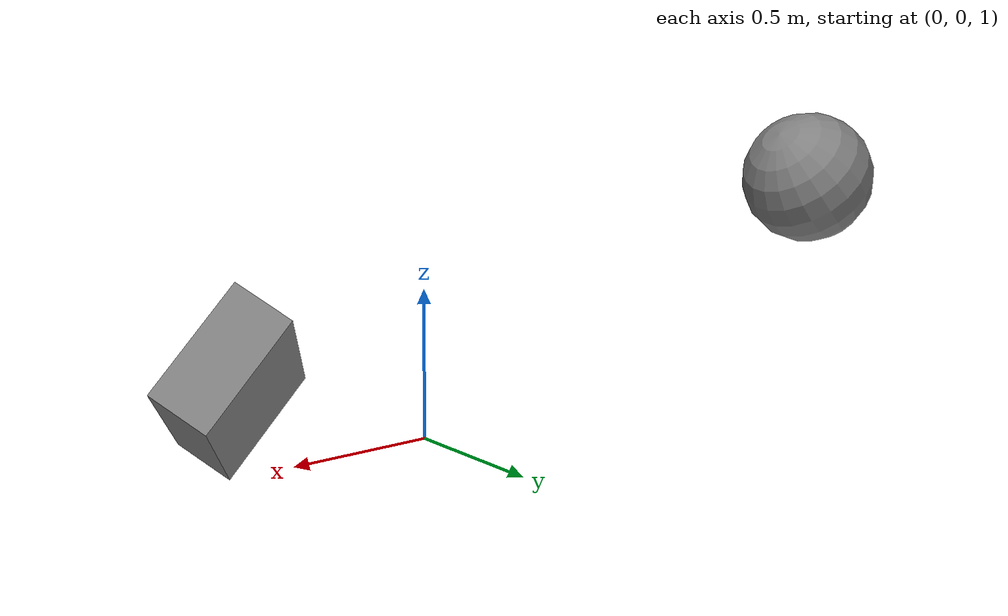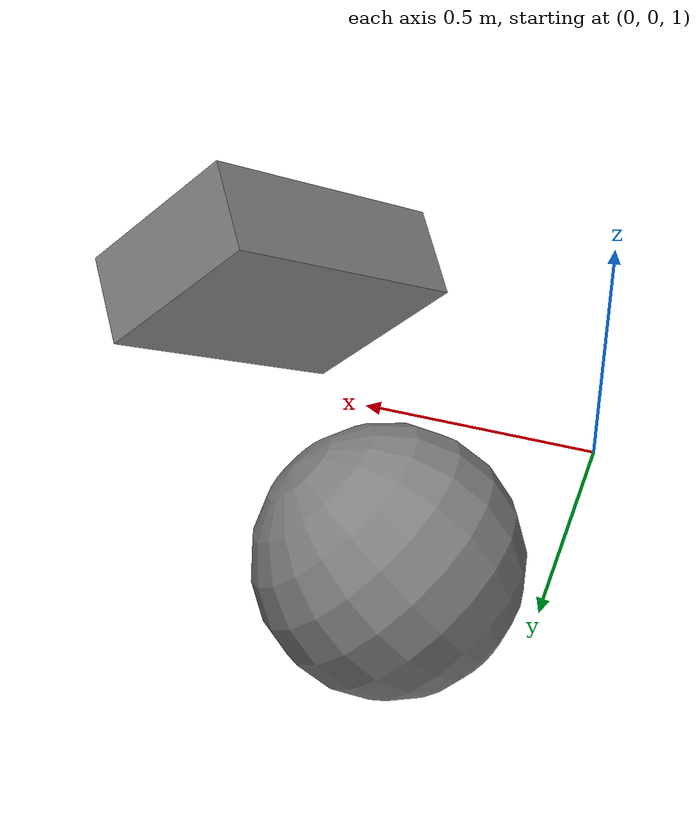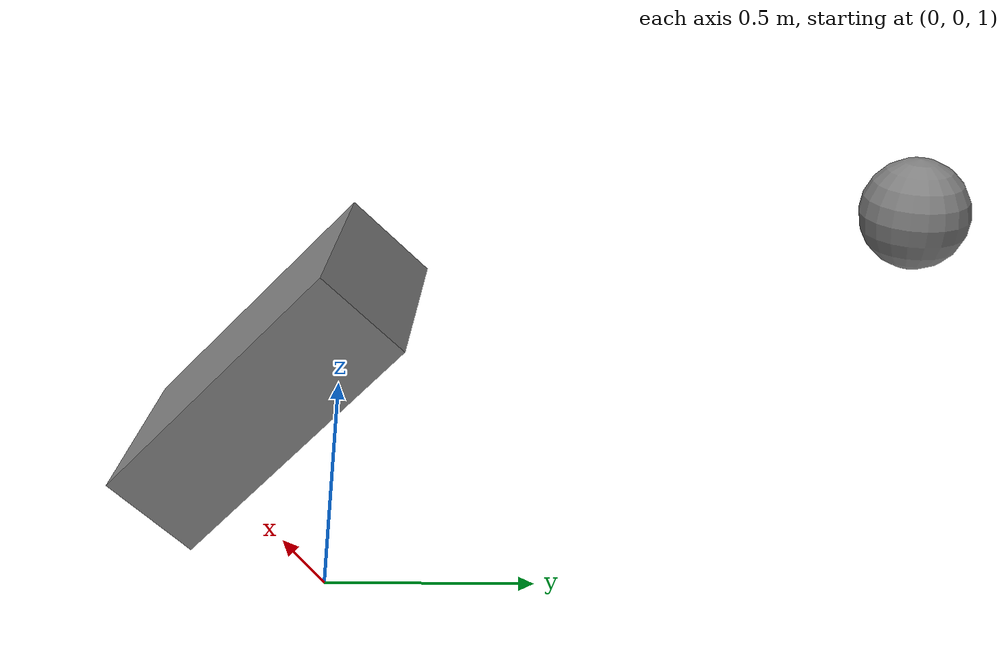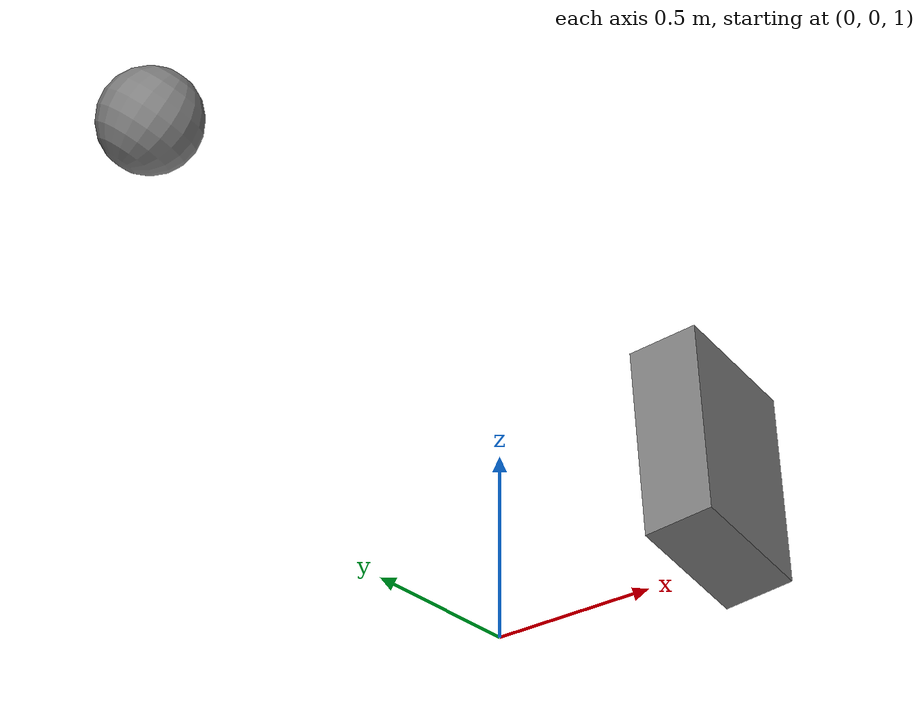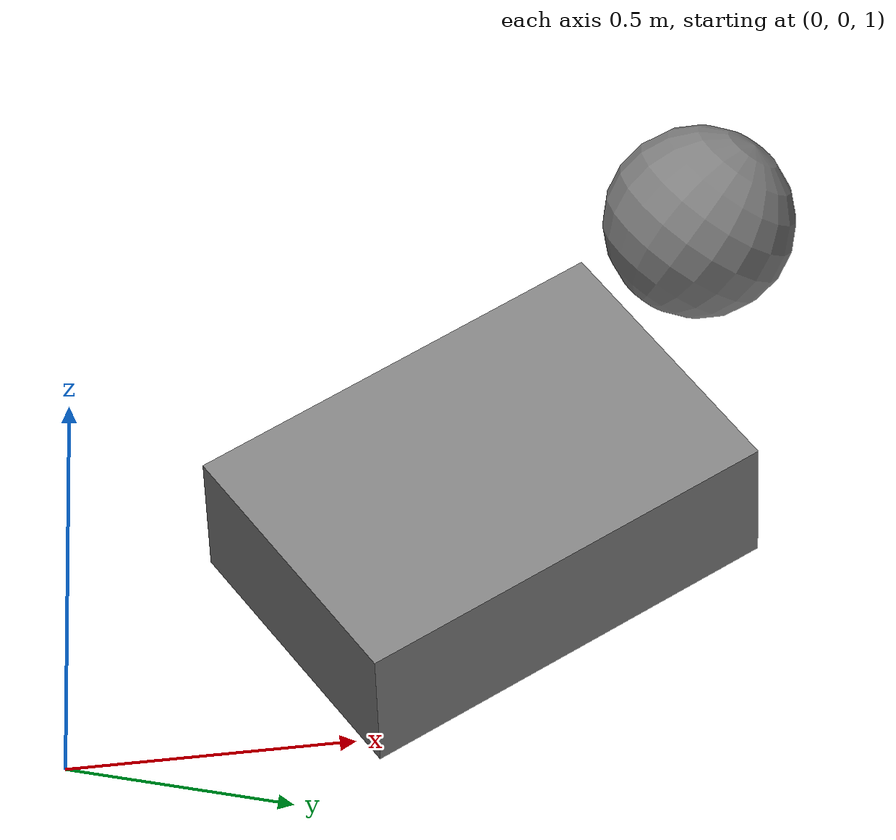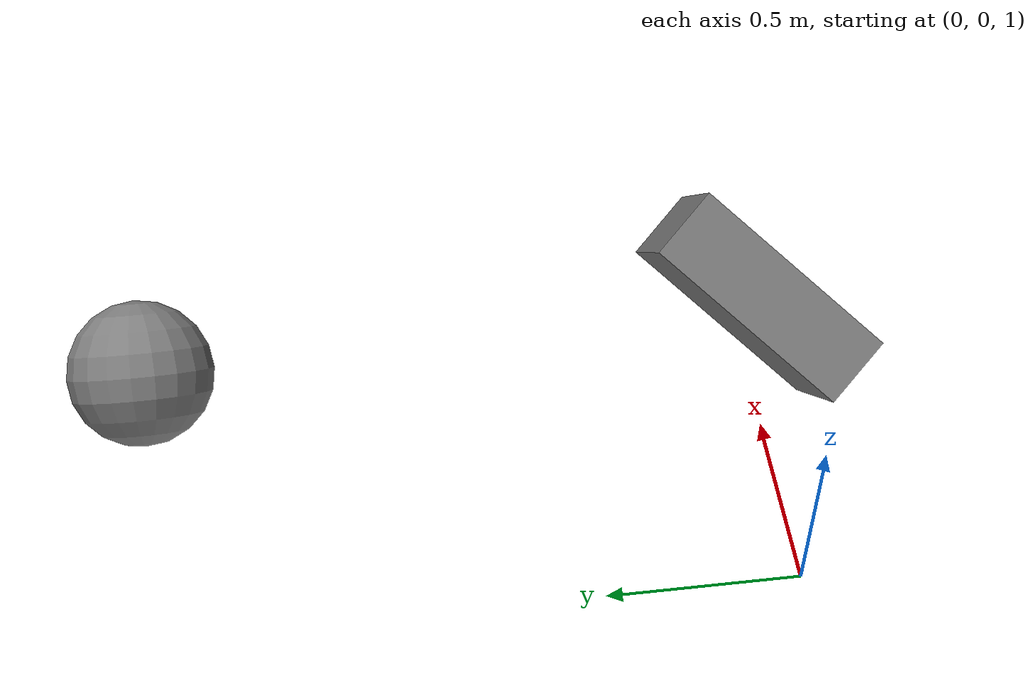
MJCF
<mujoco model="fluid-box">
  <custom>
    <numeric data="0.2" name="baumgarte_erp"/>
    <numeric data="0.5" name="elasticity"/>
    <numeric data="20" name="matrix_inv_iterations"/>
    <numeric data="15" name="solver_maxls"/>
  </custom>
  <option timestep="0.001" density="1.2" viscosity="0.15" gravity="0 0 -9.8"/>
  <worldbody>
    <!-- offset the body pos/rot for testing -->
    <body name="body1" pos="0.0 0.0 2.0" euler="0 45 0">
      <joint axis="1 0 0" name="free3" pos="0 0 0" type="free"/>

      <!-- make sure the COM is not at the body position/orientation for testing -->
      <geom name="box1" pos="1.00 0.0 0.0" euler="45 0 0" size="0.2 0.3 0.1" mass="1.5" type="box"/>

      <body name="body2" pos="0 1 0">
        <joint axis="1 0 0" name="hinge1" pos="0 0 0" type="hinge"/>
        <geom name="sphere3" pos="0 0.5 0" size="0.15" mass="1" type="sphere"/>
      </body>
    </body>
  </worldbody>
</mujoco>
